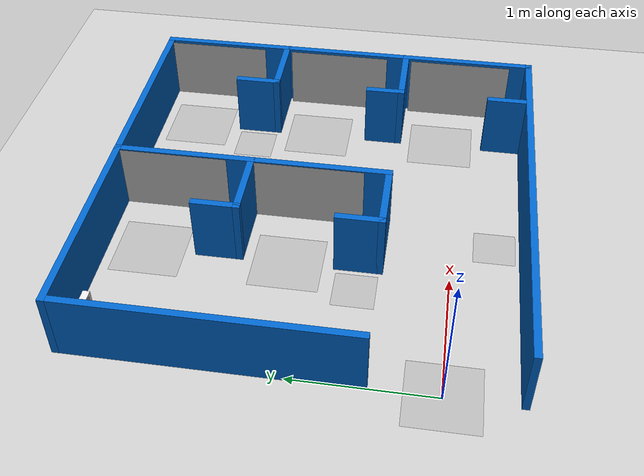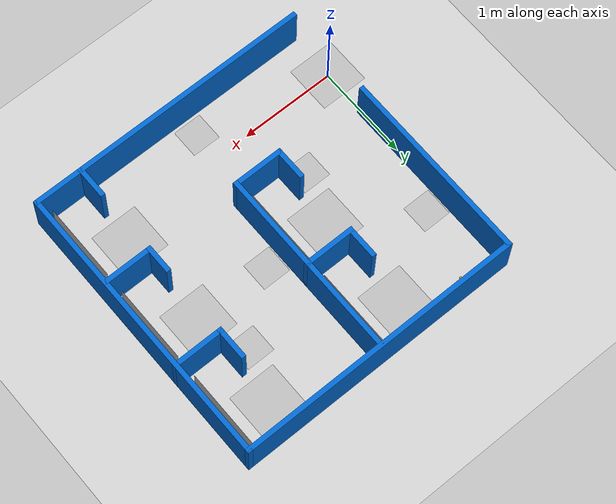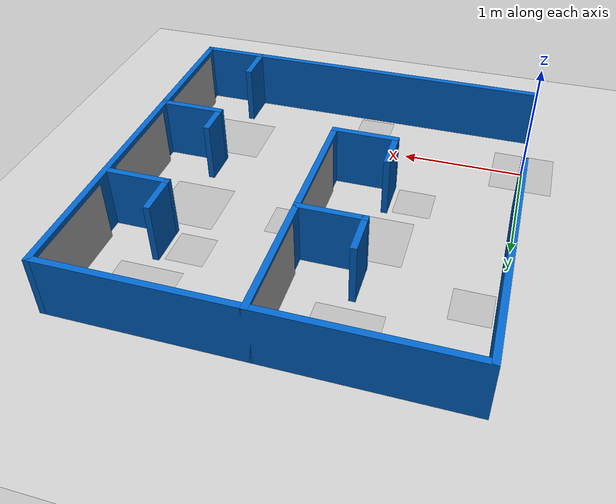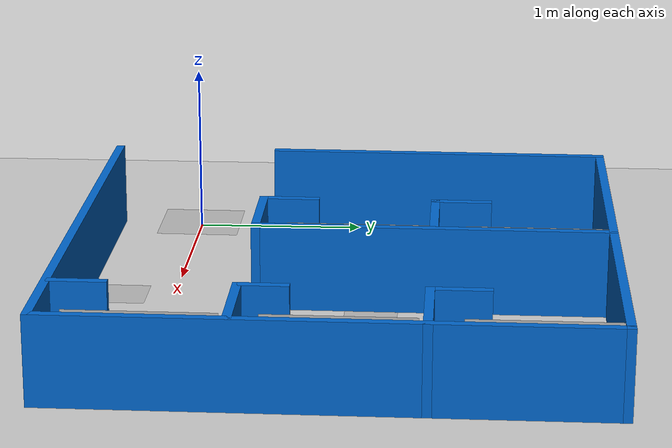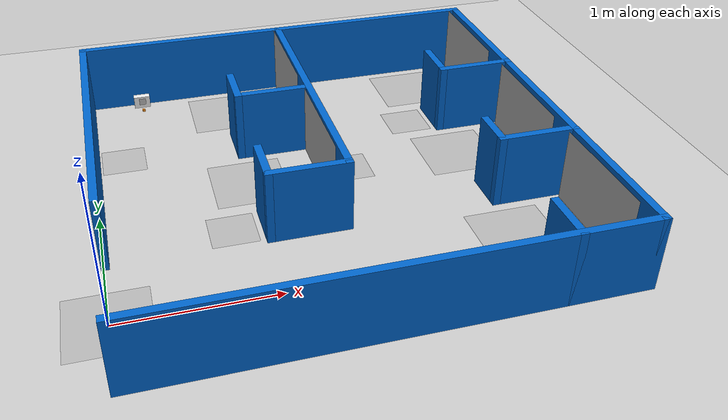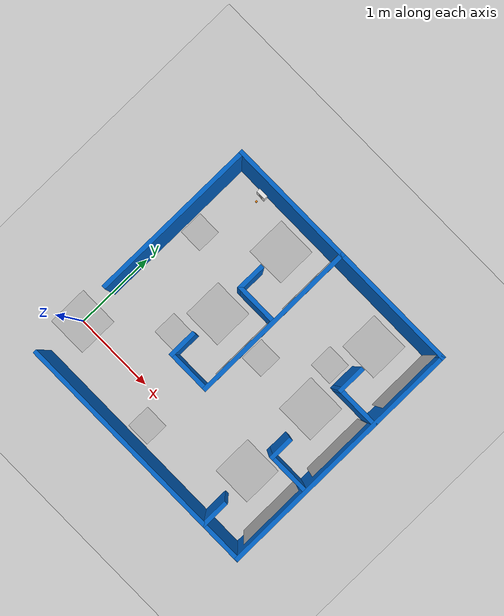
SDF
<sdf version="1.7">
 <world name="default">
  <light name="sun" type="directional">
   <pose>0 0 10 0 -0 0</pose>
   <diffuse>0.8 0.8 0.8 1</diffuse>
   <specular>0.2 0.2 0.2 1</specular>
   <attenuation>
    <range>1000</range>
    <constant>0.9</constant>
    <linear>0.01</linear>
    <quadratic>0.001</quadratic>
   </attenuation>
   <direction>-0.5 0.1 -0.9</direction>
   <spot><inner_angle>0</inner_angle><outer_angle>0</outer_angle><falloff>0</falloff></spot>
  </light>
  <gravity>0 0 -9.8</gravity>
  <magnetic_field>6e-06 2.3e-05 -4.2e-05</magnetic_field>
  <atmosphere type="adiabatic"/>
  <physics type="ode">
   <max_step_size>0.001</max_step_size>
   <real_time_factor>1</real_time_factor>
   <real_time_update_rate>1000</real_time_update_rate>
  </physics>
  <scene><ambient>0.4 0.4 0.4 1</ambient><background>0.7 0.7 0.7 1</background><shadows>1</shadows></scene>
  <spherical_coordinates>
   <surface_model>EARTH_WGS84</surface_model>
   <latitude_deg>0</latitude_deg>
   <longitude_deg>0</longitude_deg>
   <elevation>0</elevation>
   <heading_deg>0</heading_deg>
  </spherical_coordinates>
  <model name="reinovo_raicom_final">
   <link name="link_0">
    <inertial>
     <mass>0.664461</mass>
     <inertia>
      <ixx>0.110744</ixx>
      <ixy>0</ixy>
      <ixz>0</ixz>
      <iyy>0.0798188</iyy>
      <iyz>0</iyz>
      <izz>0.0798188</izz>
     </inertia>
    </inertial>
    <pose>-1.2 1.1 0.009 0 -0 0</pose>
    <sensor name="charge_contact" type="contact">
     <contact><collision>collision</collision><topic>__default_topic__</topic></contact>
     <plugin name="charge_contact" filename="libChargeContact.so"><object>charge_port</object></plugin>
    </sensor>
    <visual name="visual">
     <geometry><box><size>0.02 0.02 0.018</size></box></geometry>
     <material>
      <lighting>1</lighting>
      <script><uri>file://media/materials/scripts/gazebo.material</uri><name>Gazebo/Orange</name></script>
      <shader type="pixel"><normal_map>__default__</normal_map></shader>
     </material>
    </visual>
    <collision name="collision">
     <geometry><box><size>0.02 0.02 0.018</size></box></geometry>
     <surface>
      <friction>
       <ode><mu>1</mu><mu2>1</mu2><fdir1>0 0 0</fdir1><slip1>0</slip1><slip2>0</slip2></ode>
       <torsional>
        <coefficient>1</coefficient>
        <patch_radius>0</patch_radius>
        <surface_radius>0</surface_radius>
        <use_patch_radius>1</use_patch_radius>
        <ode><slip>0</slip></ode>
       </torsional>
      </friction>
      <bounce><restitution_coefficient>0</restitution_coefficient><threshold>1e+06</threshold></bounce>
      <contact>
       <collide_without_contact>0</collide_without_contact>
       <collide_without_contact_bitmask>1</collide_without_contact_bitmask>
       <collide_bitmask>1</collide_bitmask>
       <ode>
        <soft_cfm>0</soft_cfm>
        <soft_erp>0.2</soft_erp>
        <kp>1e+13</kp>
        <kd>1</kd>
        <max_vel>0.01</max_vel>
        <min_depth>0.01</min_depth>
       </ode>
       <bullet>
        <split_impulse>1</split_impulse>
        <split_impulse_penetration_threshold>-0.01</split_impulse_penetration_threshold>
        <soft_cfm>0</soft_cfm>
        <soft_erp>0.2</soft_erp>
        <kp>1e+13</kp>
        <kd>1</kd>
       </bullet>
      </contact>
     </surface>
    </collision>
   </link>
   <model name="rei_begin">
    <link name="link_0">
     <visual name="visual">
      <geometry><mesh><uri>model://reinovo_raicom_map/rei_begin/meshes/begin.dae</uri></mesh></geometry>
     </visual>
     <inertial>
      <inertia><ixx>1</ixx><ixy>0</ixy><ixz>0</ixz><iyy>1</iyy><iyz>0</iyz><izz>1</izz></inertia>
      <mass>1</mass>
     </inertial>
    </link>
    <pose>-1.6 -1.25 0.01 0 -0 0</pose>
   </model>
   <model name="rei_beijing">
    <link name="link_0">
     <visual name="visual">
      <geometry><mesh><uri>model://reinovo_raicom_map/rei_beijing/meshes/beijing.dae</uri></mesh></geometry>
     </visual>
     <inertial>
      <inertia><ixx>1</ixx><ixy>0</ixy><ixz>0</ixz><iyy>1</iyy><iyz>0</iyz><izz>1</izz></inertia>
      <mass>1</mass>
     </inertial>
    </link>
    <pose>1.35 -1.2 0.25 1.5707 -0 -1.5707</pose>
   </model>
   <model name="rei_goal">
    <link name="link_0">
     <visual name="visual">
      <geometry><mesh><uri>model://reinovo_raicom_map/rei_goal/meshes/goal.dae</uri></mesh></geometry>
     </visual>
     <inertial>
      <inertia><ixx>1</ixx><ixy>0</ixy><ixz>0</ixz><iyy>1</iyy><iyz>0</iyz><izz>1</izz></inertia>
      <mass>1</mass>
     </inertial>
    </link>
    <pose>-0.6 0.9 0.005 0 -0 0</pose>
   </model>
   <model name="rei_goal_0">
    <link name="link_0">
     <visual name="visual">
      <geometry><mesh><uri>model://reinovo_raicom_map/rei_goal/meshes/goal.dae</uri></mesh></geometry>
     </visual>
     <inertial>
      <inertia><ixx>1</ixx><ixy>0</ixy><ixz>0</ixz><iyy>1</iyy><iyz>0</iyz><izz>1</izz></inertia>
      <mass>1</mass>
     </inertial>
    </link>
    <pose>-0.6 -0.1 0.005 0 -0 0</pose>
   </model>
   <model name="rei_goal_1">
    <link name="link_0">
     <visual name="visual">
      <geometry><mesh><uri>model://reinovo_raicom_map/rei_goal/meshes/goal.dae</uri></mesh></geometry>
     </visual>
     <inertial>
      <inertia><ixx>1</ixx><ixy>0</ixy><ixz>0</ixz><iyy>1</iyy><iyz>0</iyz><izz>1</izz></inertia>
      <mass>1</mass>
     </inertial>
    </link>
    <pose>0.9 -1.1 0.005 0 -0 0</pose>
   </model>
   <model name="rei_goal_2">
    <link name="link_0">
     <visual name="visual">
      <geometry><mesh><uri>model://reinovo_raicom_map/rei_goal/meshes/goal.dae</uri></mesh></geometry>
     </visual>
     <inertial>
      <inertia><ixx>1</ixx><ixy>0</ixy><ixz>0</ixz><iyy>1</iyy><iyz>0</iyz><izz>1</izz></inertia>
      <mass>1</mass>
     </inertial>
    </link>
    <pose>0.9 -0.1 0.005 0 -0 0</pose>
   </model>
   <model name="rei_goal_3">
    <link name="link_0">
     <visual name="visual">
      <geometry><mesh><uri>model://reinovo_raicom_map/rei_goal/meshes/goal.dae</uri></mesh></geometry>
     </visual>
     <inertial>
      <inertia><ixx>1</ixx><ixy>0</ixy><ixz>0</ixz><iyy>1</iyy><iyz>0</iyz><izz>1</izz></inertia>
      <mass>1</mass>
     </inertial>
    </link>
    <pose>0.9 0.9 0.005 0 -0 0</pose>
   </model>
   <model name="rei_guangzhou">
    <link name="link_0">
     <visual name="visual">
      <geometry><mesh><uri>model://reinovo_raicom_map/rei_guangzhou/meshes/guangzhou.dae</uri></mesh></geometry>
     </visual>
     <inertial>
      <inertia><ixx>1</ixx><ixy>0</ixy><ixz>0</ixz><iyy>1</iyy><iyz>0</iyz><izz>1</izz></inertia>
      <mass>1</mass>
     </inertial>
    </link>
    <pose>1.35 -0.2 0.25 1.5707 -0 -1.5707</pose>
   </model>
   <model name="rei_jiling">
    <link name="link_0">
     <visual name="visual">
      <geometry><mesh><uri>model://reinovo_raicom_map/rei_jiling/meshes/jiling.dae</uri></mesh></geometry>
     </visual>
     <inertial>
      <inertia><ixx>1</ixx><ixy>0</ixy><ixz>0</ixz><iyy>1</iyy><iyz>0</iyz><izz>1</izz></inertia>
      <mass>1</mass>
     </inertial>
    </link>
    <pose>1.35 0.825 0.25 1.5707 -0 -1.5707</pose>
   </model>
   <model name="rei_obs">
    <link name="link_0">
     <visual name="visual">
      <geometry><mesh><uri>model://reinovo_raicom_map/rei_obs/meshes/obs.dae</uri></mesh></geometry>
     </visual>
     <inertial>
      <inertia><ixx>1</ixx><ixy>0</ixy><ixz>0</ixz><iyy>1</iyy><iyz>0</iyz><izz>1</izz></inertia>
      <mass>1</mass>
     </inertial>
    </link>
    <pose>-0.8 -0.6 0.005 0 -0 0</pose>
   </model>
   <model name="rei_obs_0">
    <link name="link_0">
     <visual name="visual">
      <geometry><mesh><uri>model://reinovo_raicom_map/rei_obs/meshes/obs.dae</uri></mesh></geometry>
     </visual>
     <inertial>
      <inertia><ixx>1</ixx><ixy>0</ixy><ixz>0</ixz><iyy>1</iyy><iyz>0</iyz><izz>1</izz></inertia>
      <mass>1</mass>
     </inertial>
    </link>
    <pose>-1.4 0.4 0.005 0 -0 0</pose>
   </model>
   <model name="rei_obs_1">
    <link name="link_0">
     <visual name="visual">
      <geometry><mesh><uri>model://reinovo_raicom_map/rei_obs/meshes/obs.dae</uri></mesh></geometry>
     </visual>
     <inertial>
      <inertia><ixx>1</ixx><ixy>0</ixy><ixz>0</ixz><iyy>1</iyy><iyz>0</iyz><izz>1</izz></inertia>
      <mass>1</mass>
     </inertial>
    </link>
    <pose>-0.25 -1.55 0.005 0 -0 0</pose>
   </model>
   <model name="rei_obs_2">
    <link name="link_0">
     <visual name="visual">
      <geometry><mesh><uri>model://reinovo_raicom_map/rei_obs/meshes/obs.dae</uri></mesh></geometry>
     </visual>
     <inertial>
      <inertia><ixx>1</ixx><ixy>0</ixy><ixz>0</ixz><iyy>1</iyy><iyz>0</iyz><izz>1</izz></inertia>
      <mass>1</mass>
     </inertial>
    </link>
    <pose>0.7 0.4 0.005 0 -0 0</pose>
   </model>
   <model name="rei_obs_3">
    <link name="link_0">
     <visual name="visual">
      <geometry><mesh><uri>model://reinovo_raicom_map/rei_obs/meshes/obs.dae</uri></mesh></geometry>
     </visual>
     <inertial>
      <inertia><ixx>1</ixx><ixy>0</ixy><ixz>0</ixz><iyy>1</iyy><iyz>0</iyz><izz>1</izz></inertia>
      <mass>1</mass>
     </inertial>
    </link>
    <pose>0.1 -0.1 0.005 0 -0 0</pose>
   </model>
   <model name="rei_shanghai">
    <link name="link_0">
     <visual name="visual">
      <geometry><mesh><uri>model://reinovo_raicom_map/rei_shanghai/meshes/shanghai.dae</uri></mesh></geometry>
     </visual>
     <inertial>
      <inertia><ixx>1</ixx><ixy>0</ixy><ixz>0</ixz><iyy>1</iyy><iyz>0</iyz><izz>1</izz></inertia>
      <mass>1</mass>
     </inertial>
    </link>
    <pose>-0.125 0.825 0.25 1.5707 -0 -1.5707</pose>
   </model>
   <model name="rei_shenzhen">
    <link name="link_0">
     <visual name="visual">
      <geometry><mesh><uri>model://reinovo_raicom_map/rei_shenzhen/meshes/shenzhen.dae</uri></mesh></geometry>
     </visual>
     <inertial>
      <inertia><ixx>1</ixx><ixy>0</ixy><ixz>0</ixz><iyy>1</iyy><iyz>0</iyz><izz>1</izz></inertia>
      <mass>1</mass>
     </inertial>
    </link>
    <pose>-0.125 -0.18 0.25 1.5707 -0 -1.5707</pose>
   </model>
   <model name="reinovo_match">
    <pose>-0.088531 -0.254283 0 0 -0 0</pose>
    <link name="Wall_0">
     <collision name="Wall_0_Collision">
      <geometry><box><size>3.05 0.05 0.5</size></box></geometry>
      <pose>0 0 0.25 0 -0 0</pose>
     </collision>
     <visual name="Wall_0_Visual">
      <pose>0 0 0.25 0 -0 0</pose>
      <geometry><box><size>3.05 0.05 0.5</size></box></geometry>
      <material>
       <ambient>0 0.4 0.8 1</ambient>
       <diffuse>0 0.4 0.8 1</diffuse>
       <specular>1 1 1 1</specular>
       <emissive>0 0 0 1</emissive>
      </material>
      <meta><layer>0</layer></meta>
     </visual>
     <pose>0 -1.5 0 0 -0 0</pose>
    </link>
    <link name="Wall_11">
     <collision name="Wall_11_Collision">
      <geometry><box><size>0.3 0.05 0.5</size></box></geometry>
      <pose>0 0 0.25 0 -0 0</pose>
     </collision>
     <visual name="Wall_11_Visual">
      <pose>0 0 0.25 0 -0 0</pose>
      <geometry><box><size>0.3 0.05 0.5</size></box></geometry>
      <material>
       <ambient>0 0.4 0.8 1</ambient>
       <diffuse>0 0.4 0.8 1</diffuse>
       <specular>1 1 1 1</specular>
       <emissive>0 0 0 1</emissive>
      </material>
      <meta><layer>0</layer></meta>
     </visual>
     <pose>1 -0.375 0 0 -0 1.5708</pose>
    </link>
    <link name="Wall_13">
     <collision name="Wall_13_Collision">
      <geometry><box><size>0.35 0.05 0.5</size></box></geometry>
      <pose>0 0 0.25 0 -0 0</pose>
     </collision>
     <visual name="Wall_13_Visual">
      <pose>0 0 0.25 0 -0 0</pose>
      <geometry><box><size>0.35 0.05 0.5</size></box></geometry>
      <material>
       <ambient>0 0.4 0.8 1</ambient>
       <diffuse>0 0.4 0.8 1</diffuse>
       <specular>1 1 1 1</specular>
       <emissive>0 0 0 1</emissive>
      </material>
      <meta><layer>0</layer></meta>
     </visual>
     <pose>1 0.65 0 0 -0 1.5708</pose>
    </link>
    <link name="Wall_16">
     <collision name="Wall_16_Collision">
      <geometry><box><size>0.55 0.05 0.5</size></box></geometry>
      <pose>0 0 0.25 0 -0 0</pose>
     </collision>
     <visual name="Wall_16_Visual">
      <pose>0 0 0.25 0 -0 0</pose>
      <geometry><box><size>0.55 0.05 0.5</size></box></geometry>
      <material>
       <ambient>0 0.4 0.8 1</ambient>
       <diffuse>0 0.4 0.8 1</diffuse>
       <specular>1 1 1 1</specular>
       <emissive>0 0 0 1</emissive>
      </material>
      <meta><layer>0</layer></meta>
     </visual>
     <pose>1.25 0.5 0 0 -0 3.14159</pose>
    </link>
    <link name="Wall_18">
     <collision name="Wall_18_Collision">
      <geometry><box><size>0.55 0.05 0.5</size></box></geometry>
      <pose>0 0 0.25 0 -0 0</pose>
     </collision>
     <visual name="Wall_18_Visual">
      <pose>0 0 0.25 0 -0 0</pose>
      <geometry><box><size>0.55 0.05 0.5</size></box></geometry>
      <material>
       <ambient>0 0.4 0.8 1</ambient>
       <diffuse>0 0.4 0.8 1</diffuse>
       <specular>1 1 1 1</specular>
       <emissive>0 0 0 1</emissive>
      </material>
      <meta><layer>0</layer></meta>
     </visual>
     <pose>1.25 -0.5 0 0 -0 3.14159</pose>
    </link>
    <link name="Wall_2">
     <collision name="Wall_2_Collision">
      <geometry><box><size>3.05 0.05 0.5</size></box></geometry>
      <pose>0 0 0.25 0 -0 0</pose>
     </collision>
     <visual name="Wall_2_Visual">
      <pose>0 0 0.25 0 -0 0</pose>
      <geometry><box><size>3.05 0.05 0.5</size></box></geometry>
      <material>
       <ambient>0 0.4 0.8 1</ambient>
       <diffuse>0 0.4 0.8 1</diffuse>
       <specular>1 1 1 1</specular>
       <emissive>0 0 0 1</emissive>
      </material>
      <meta><layer>0</layer></meta>
     </visual>
     <pose>1.5 0 0 0 -0 1.5708</pose>
    </link>
    <link name="Wall_20">
     <collision name="Wall_20_Collision">
      <geometry><box><size>0.55 0.05 0.5</size></box></geometry>
      <pose>0 0 0.25 0 -0 0</pose>
     </collision>
     <visual name="Wall_20_Visual">
      <pose>0 0 0.25 0 -0 0</pose>
      <geometry><box><size>0.55 0.05 0.5</size></box></geometry>
      <material>
       <ambient>0 0.4 0.8 1</ambient>
       <diffuse>0 0.4 0.8 1</diffuse>
       <specular>1 1 1 1</specular>
       <emissive>0 0 0 1</emissive>
      </material>
      <meta><layer>0</layer></meta>
     </visual>
     <pose>-0.25 0.5 0 0 -0 3.14159</pose>
    </link>
    <link name="Wall_22">
     <collision name="Wall_22_Collision">
      <geometry><box><size>0.55 0.05 0.5</size></box></geometry>
      <pose>0 0 0.25 0 -0 0</pose>
     </collision>
     <visual name="Wall_22_Visual">
      <pose>0 0 0.25 0 -0 0</pose>
      <geometry><box><size>0.55 0.05 0.5</size></box></geometry>
      <material>
       <ambient>0 0.4 0.8 1</ambient>
       <diffuse>0 0.4 0.8 1</diffuse>
       <specular>1 1 1 1</specular>
       <emissive>0 0 0 1</emissive>
      </material>
      <meta><layer>0</layer></meta>
     </visual>
     <pose>-0.25 -0.5 0 0 -0 3.14159</pose>
    </link>
    <link name="Wall_24">
     <collision name="Wall_24_Collision">
      <geometry><box><size>2.05 0.05 0.5</size></box></geometry>
      <pose>0 0 0.25 0 -0 0</pose>
     </collision>
     <visual name="Wall_24_Visual">
      <pose>0 0 0.25 0 -0 0</pose>
      <geometry><box><size>2.05 0.05 0.5</size></box></geometry>
      <material>
       <ambient>0 0.4 0.8 1</ambient>
       <diffuse>0 0.4 0.8 1</diffuse>
       <specular>1 1 1 1</specular>
       <emissive>0 0 0 1</emissive>
      </material>
      <meta><layer>0</layer></meta>
     </visual>
     <pose>0 0.5 0 0 -0 -1.5708</pose>
    </link>
    <link name="Wall_26">
     <collision name="Wall_26_Collision">
      <geometry><box><size>0.35 0.05 0.5</size></box></geometry>
      <pose>0 0 0.25 0 -0 0</pose>
     </collision>
     <visual name="Wall_26_Visual">
      <pose>0 0 0.25 0 -0 0</pose>
      <geometry><box><size>0.35 0.05 0.5</size></box></geometry>
      <material>
       <ambient>0 0.4 0.8 1</ambient>
       <diffuse>0 0.4 0.8 1</diffuse>
       <specular>1 1 1 1</specular>
       <emissive>0 0 0 1</emissive>
      </material>
      <meta><layer>0</layer></meta>
     </visual>
     <pose>-0.5 0.65 0 0 -0 1.5708</pose>
    </link>
    <link name="Wall_28">
     <collision name="Wall_28_Collision">
      <geometry><box><size>0.35 0.05 0.5</size></box></geometry>
      <pose>0 0 0.25 0 -0 0</pose>
     </collision>
     <visual name="Wall_28_Visual">
      <pose>0 0 0.25 0 -0 0</pose>
      <geometry><box><size>0.35 0.05 0.5</size></box></geometry>
      <material>
       <ambient>0 0.4 0.8 1</ambient>
       <diffuse>0 0.4 0.8 1</diffuse>
       <specular>1 1 1 1</specular>
       <emissive>0 0 0 1</emissive>
      </material>
      <meta><layer>0</layer></meta>
     </visual>
     <pose>-0.5 -0.35 0 0 -0 1.5708</pose>
    </link>
    <link name="Wall_4">
     <collision name="Wall_4_Collision">
      <geometry><box><size>3.05 0.05 0.5</size></box></geometry>
      <pose>0 0 0.25 0 -0 0</pose>
     </collision>
     <visual name="Wall_4_Visual">
      <pose>0 0 0.25 0 -0 0</pose>
      <geometry><box><size>3.05 0.05 0.5</size></box></geometry>
      <material>
       <ambient>0 0.4 0.8 1</ambient>
       <diffuse>0 0.4 0.8 1</diffuse>
       <specular>1 1 1 1</specular>
       <emissive>0 0 0 1</emissive>
      </material>
      <meta><layer>0</layer></meta>
     </visual>
     <pose>0 1.5 0 0 -0 3.14159</pose>
    </link>
    <link name="Wall_6">
     <collision name="Wall_6_Collision">
      <geometry><box><size>2.05 0.05 0.5</size></box></geometry>
      <pose>0 0 0.25 0 -0 0</pose>
     </collision>
     <visual name="Wall_6_Visual">
      <pose>0 0 0.25 0 -0 0</pose>
      <geometry><box><size>2.05 0.05 0.5</size></box></geometry>
      <material>
       <ambient>0 0.4 0.8 1</ambient>
       <diffuse>0 0.4 0.8 1</diffuse>
       <specular>1 1 1 1</specular>
       <emissive>0 0 0 1</emissive>
      </material>
      <meta><layer>0</layer></meta>
     </visual>
     <pose>-1.5 0.5 0 0 -0 -1.5708</pose>
    </link>
    <link name="Wall_8">
     <collision name="Wall_8_Collision">
      <geometry><box><size>0.35 0.05 0.5</size></box></geometry>
      <pose>0 0 0.25 0 -0 0</pose>
     </collision>
     <visual name="Wall_8_Visual">
      <pose>0 0 0.25 0 -0 0</pose>
      <geometry><box><size>0.35 0.05 0.5</size></box></geometry>
      <material>
       <ambient>0 0.4 0.8 1</ambient>
       <diffuse>0 0.4 0.8 1</diffuse>
       <specular>1 1 1 1</specular>
       <emissive>0 0 0 1</emissive>
      </material>
      <meta><layer>0</layer></meta>
     </visual>
     <pose>1 -1.35 0 0 -0 1.5708</pose>
    </link>
    <static>1</static>
   </model>
   <model name="small_marker_charge_pile">
    <link name="link_0">
     <inertial>
      <mass>10</mass>
      <inertia>
       <ixx>0.01875</ixx>
       <ixy>0</ixy>
       <ixz>0</ixz>
       <iyy>0.00883333</iyy>
       <iyz>0</iyz>
       <izz>0.0140833</izz>
      </inertia>
     </inertial>
     <pose>0.002297 -0.003336 0.045 0 -0 0</pose>
     <visual name="visual">
      <geometry><box><size>0.05 0.12 0.09</size></box></geometry>
      <material>
       <lighting>1</lighting>
       <script><uri>file://media/materials/scripts/gazebo.material</uri><name>Gazebo/White</name></script>
       <shader type="pixel"><normal_map>__default__</normal_map></shader>
       <ambient>1 1 1 1</ambient>
       <diffuse>1 1 1 1</diffuse>
       <specular>1 1 1 1</specular>
       <emissive>0 0 0 1</emissive>
      </material>
     </visual>
     <collision name="collision">
      <geometry><box><size>0.05 0.12 0.09</size></box></geometry>
      <surface>
       <friction>
        <ode><mu>1</mu><mu2>1</mu2><fdir1>0 0 0</fdir1><slip1>0</slip1><slip2>0</slip2></ode>
        <torsional>
         <coefficient>1</coefficient>
         <patch_radius>0</patch_radius>
         <surface_radius>0</surface_radius>
         <use_patch_radius>1</use_patch_radius>
         <ode><slip>0</slip></ode>
        </torsional>
       </friction>
       <bounce><restitution_coefficient>0</restitution_coefficient><threshold>1e+06</threshold></bounce>
       <contact>
        <collide_without_contact>0</collide_without_contact>
        <collide_without_contact_bitmask>1</collide_without_contact_bitmask>
        <collide_bitmask>1</collide_bitmask>
        <ode>
         <soft_cfm>0</soft_cfm>
         <soft_erp>0.2</soft_erp>
         <kp>1e+13</kp>
         <kd>1</kd>
         <max_vel>0.01</max_vel>
         <min_depth>0</min_depth>
        </ode>
        <bullet>
         <split_impulse>1</split_impulse>
         <split_impulse_penetration_threshold>-0.01</split_impulse_penetration_threshold>
         <soft_cfm>0</soft_cfm>
         <soft_erp>0.2</soft_erp>
         <kp>1e+13</kp>
         <kd>1</kd>
        </bullet>
       </contact>
      </surface>
     </collision>
    </link>
    <link name="link_1">
     <inertial>
      <mass>1</mass>
      <inertia>
       <ixx>0.166667</ixx>
       <ixy>0</ixy>
       <ixz>0</ixz>
       <iyy>0.166667</iyy>
       <iyz>0</iyz>
       <izz>0.166667</izz>
      </inertia>
     </inertial>
     <pose>0.028 0 0.05 0 -0 0</pose>
     <visual name="visual">
      <geometry><box><size>0.0001 0.05 0.05</size></box></geometry>
      <material>
       <lighting>1</lighting>
       <script>
        <uri>model://small_marker_charge_pile/materials/textures</uri>
        <uri>model://small_marker_charge_pile/materials/scripts</uri>
        <name>reinovo/ar_track_0</name>
       </script>
       <shader type="pixel"><normal_map>__default__</normal_map></shader>
       <specular>0.01 0.01 0.01 1</specular>
       <emissive>0 0 0 1</emissive>
      </material>
     </visual>
     <collision name="collision">
      <geometry><box><size>0.001 0.05 0.05</size></box></geometry>
      <surface>
       <friction>
        <ode><mu>1</mu><mu2>1</mu2><fdir1>0 0 0</fdir1><slip1>0</slip1><slip2>0</slip2></ode>
        <torsional>
         <coefficient>1</coefficient>
         <patch_radius>0</patch_radius>
         <surface_radius>0</surface_radius>
         <use_patch_radius>1</use_patch_radius>
         <ode><slip>0</slip></ode>
        </torsional>
       </friction>
       <bounce><restitution_coefficient>0</restitution_coefficient><threshold>1e+06</threshold></bounce>
       <contact>
        <collide_without_contact>0</collide_without_contact>
        <collide_without_contact_bitmask>1</collide_without_contact_bitmask>
        <collide_bitmask>1</collide_bitmask>
        <ode>
         <soft_cfm>0</soft_cfm>
         <soft_erp>0.2</soft_erp>
         <kp>1e+13</kp>
         <kd>1</kd>
         <max_vel>0.01</max_vel>
         <min_depth>0</min_depth>
        </ode>
        <bullet>
         <split_impulse>1</split_impulse>
         <split_impulse_penetration_threshold>-0.01</split_impulse_penetration_threshold>
         <soft_cfm>0</soft_cfm>
         <soft_erp>0.2</soft_erp>
         <kp>1e+13</kp>
         <kd>1</kd>
        </bullet>
       </contact>
      </surface>
     </collision>
    </link>
    <joint name="link_0_JOINT_0" type="fixed">
     <parent>link_0</parent>
     <child>link_1</child>
     <physics>
      <ode><limit><cfm>0</cfm><erp>0.2</erp></limit><suspension><cfm>0</cfm><erp>0.2</erp></suspension></ode>
     </physics>
    </joint>
    <static>0</static>
    <pose>-1.2 1.19 -0 0 0 -1.5707</pose>
   </model>
   <joint name="Wall_0_JOINT_9" type="fixed">
    <parent>reinovo_match::Wall_0</parent>
    <child>rei_obs_1::link_0</child>
    <physics>
     <ode><limit><cfm>0</cfm><erp>0.2</erp></limit><suspension><cfm>0</cfm><erp>0.2</erp></suspension></ode>
    </physics>
   </joint>
   <joint name="Wall_11_JOINT_14" type="fixed">
    <parent>reinovo_match::Wall_11</parent>
    <child>rei_goal_2::link_0</child>
    <physics>
     <ode><limit><cfm>0</cfm><erp>0.2</erp></limit><suspension><cfm>0</cfm><erp>0.2</erp></suspension></ode>
    </physics>
   </joint>
   <joint name="Wall_13_JOINT_15" type="fixed">
    <parent>reinovo_match::Wall_13</parent>
    <child>rei_goal_3::link_0</child>
    <physics>
     <ode><limit><cfm>0</cfm><erp>0.2</erp></limit><suspension><cfm>0</cfm><erp>0.2</erp></suspension></ode>
    </physics>
   </joint>
   <joint name="Wall_13_JOINT_16" type="fixed">
    <parent>reinovo_match::Wall_13</parent>
    <child>rei_obs_2::link_0</child>
    <physics>
     <ode><limit><cfm>0</cfm><erp>0.2</erp></limit><suspension><cfm>0</cfm><erp>0.2</erp></suspension></ode>
    </physics>
   </joint>
   <joint name="Wall_24_JOINT_17" type="fixed">
    <parent>reinovo_match::Wall_24</parent>
    <child>rei_obs_3::link_0</child>
    <physics>
     <ode><limit><cfm>0</cfm><erp>0.2</erp></limit><suspension><cfm>0</cfm><erp>0.2</erp></suspension></ode>
    </physics>
   </joint>
   <joint name="Wall_24_JOINT_2" type="fixed">
    <parent>reinovo_match::Wall_24</parent>
    <child>rei_shanghai::link_0</child>
    <physics>
     <ode><limit><cfm>0</cfm><erp>0.2</erp></limit><suspension><cfm>0</cfm><erp>0.2</erp></suspension></ode>
    </physics>
   </joint>
   <joint name="Wall_24_JOINT_5" type="fixed">
    <parent>reinovo_match::Wall_24</parent>
    <child>rei_shenzhen::link_0</child>
    <physics>
     <ode><limit><cfm>0</cfm><erp>0.2</erp></limit><suspension><cfm>0</cfm><erp>0.2</erp></suspension></ode>
    </physics>
   </joint>
   <joint name="Wall_26_JOINT_4" type="fixed">
    <parent>reinovo_match::Wall_26</parent>
    <child>rei_goal::link_0</child>
    <physics>
     <ode><limit><cfm>0</cfm><erp>0.2</erp></limit><suspension><cfm>0</cfm><erp>0.2</erp></suspension></ode>
    </physics>
   </joint>
   <joint name="Wall_28_JOINT_6" type="fixed">
    <parent>reinovo_match::Wall_28</parent>
    <child>rei_goal_0::link_0</child>
    <physics>
     <ode><limit><cfm>0</cfm><erp>0.2</erp></limit><suspension><cfm>0</cfm><erp>0.2</erp></suspension></ode>
    </physics>
   </joint>
   <joint name="Wall_28_JOINT_7" type="fixed">
    <parent>reinovo_match::Wall_28</parent>
    <child>rei_obs::link_0</child>
    <physics>
     <ode><limit><cfm>0</cfm><erp>0.2</erp></limit><suspension><cfm>0</cfm><erp>0.2</erp></suspension></ode>
    </physics>
   </joint>
   <joint name="Wall_2_JOINT_10" type="fixed">
    <parent>reinovo_match::Wall_2</parent>
    <child>rei_beijing::link_0</child>
    <physics>
     <ode><limit><cfm>0</cfm><erp>0.2</erp></limit><suspension><cfm>0</cfm><erp>0.2</erp></suspension></ode>
    </physics>
   </joint>
   <joint name="Wall_2_JOINT_11" type="fixed">
    <parent>reinovo_match::Wall_2</parent>
    <child>rei_guangzhou::link_0</child>
    <physics>
     <ode><limit><cfm>0</cfm><erp>0.2</erp></limit><suspension><cfm>0</cfm><erp>0.2</erp></suspension></ode>
    </physics>
   </joint>
   <joint name="Wall_2_JOINT_12" type="fixed">
    <parent>reinovo_match::Wall_2</parent>
    <child>rei_jiling::link_0</child>
    <physics>
     <ode><limit><cfm>0</cfm><erp>0.2</erp></limit><suspension><cfm>0</cfm><erp>0.2</erp></suspension></ode>
    </physics>
   </joint>
   <joint name="Wall_6_JOINT_0" type="fixed">
    <parent>reinovo_match::Wall_6</parent>
    <child>rei_begin::link_0</child>
    <physics>
     <ode><limit><cfm>0</cfm><erp>0.2</erp></limit><suspension><cfm>0</cfm><erp>0.2</erp></suspension></ode>
    </physics>
   </joint>
   <joint name="Wall_6_JOINT_8" type="fixed">
    <parent>reinovo_match::Wall_6</parent>
    <child>rei_obs_0::link_0</child>
    <physics>
     <ode><limit><cfm>0</cfm><erp>0.2</erp></limit><suspension><cfm>0</cfm><erp>0.2</erp></suspension></ode>
    </physics>
   </joint>
   <joint name="Wall_8_JOINT_13" type="fixed">
    <parent>reinovo_match::Wall_8</parent>
    <child>rei_goal_1::link_0</child>
    <physics>
     <ode><limit><cfm>0</cfm><erp>0.2</erp></limit><suspension><cfm>0</cfm><erp>0.2</erp></suspension></ode>
    </physics>
   </joint>
   <joint name="link_0_JOINT_2" type="prismatic">
    <parent>small_marker_charge_pile::link_0</parent>
    <child>link_0</child>
    <axis>
     <xyz>0 1 0</xyz>
     <dynamics>
      <damping>100</damping>
      <spring_reference>0</spring_reference>
      <spring_stiffness>1000</spring_stiffness>
     </dynamics>
     <limit><lower>-1e+16</lower><upper>1e+16</upper></limit>
    </axis>
    <physics>
     <ode><limit><cfm>0</cfm><erp>0.2</erp></limit><suspension><cfm>0</cfm><erp>0.01</erp></suspension></ode>
    </physics>
   </joint>
   <joint name="Wall_4_JOINT_0" type="fixed">
    <parent>reinovo_match::Wall_4</parent>
    <child>small_marker_charge_pile::link_0</child>
    <physics>
     <ode><limit><cfm>0</cfm><erp>0.2</erp></limit><suspension><cfm>0</cfm><erp>0.2</erp></suspension></ode>
    </physics>
   </joint>
   <static>0</static>
   <pose>1.59996 1.24699 0.005954 -0.00375 -0.000844 -1.8e-05</pose>
  </model>
  <light name="charge_light" type="spot">
   <pose>1.04085 2.21338 1 0 -0 0</pose>
   <diffuse>1 0 0 1</diffuse>
   <specular>1 0 0 1</specular>
   <direction>0 0 -1</direction>
   <attenuation><range>0</range><constant>0</constant><linear>0</linear><quadratic>0</quadratic></attenuation>
   <cast_shadows>0</cast_shadows>
   <spot><inner_angle>0.6</inner_angle><outer_angle>2</outer_angle><falloff>1</falloff></spot>
  </light>
  <model name="ground_plane">
   <static>1</static>
   <link name="link">
    <collision name="collision">
     <geometry><plane><normal>0 0 1</normal><size>100 100</size></plane></geometry>
     <surface>
      <contact><collide_bitmask>65535</collide_bitmask></contact>
      <friction><ode><mu>100</mu><mu2>50</mu2></ode></friction>
     </surface>
    </collision>
    <visual name="visual">
     <cast_shadows>0</cast_shadows>
     <geometry><plane><normal>0 0 1</normal><size>100 100</size></plane></geometry>
     <material>
      <script><uri>file://media/materials/scripts/gazebo.material</uri><name>Gazebo/Grey</name></script>
     </material>
    </visual>
   </link>
   <pose>0 6 0 0 -0 0</pose>
  </model>
 </world>
</sdf>
